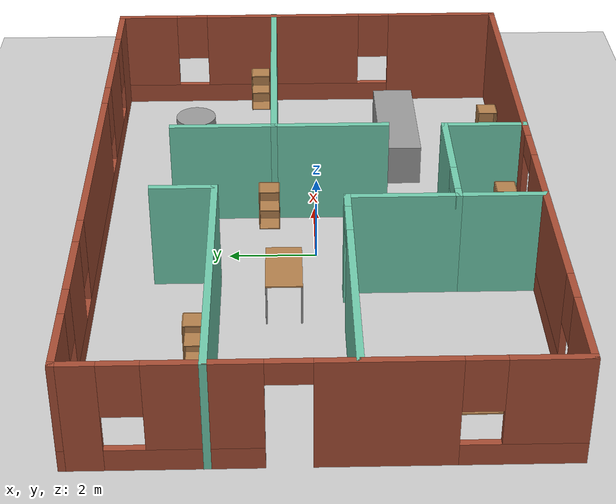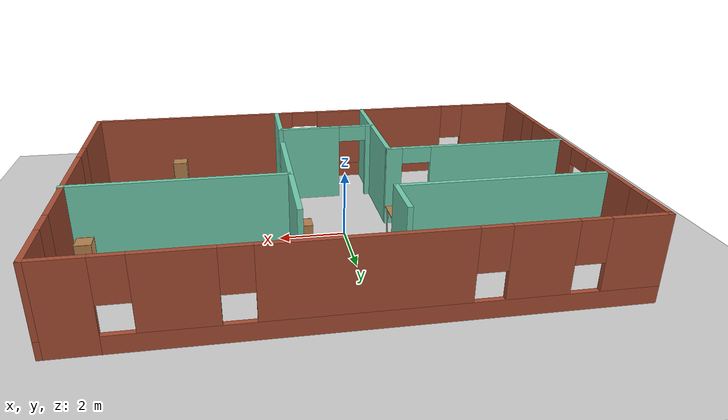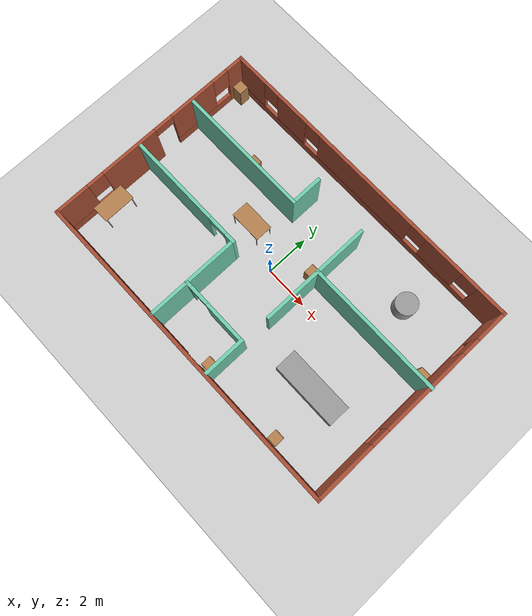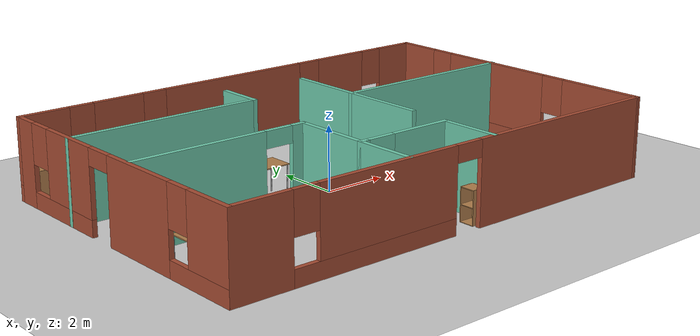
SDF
<sdf version="1.6">
 <world name="default">
  <plugin name="welcomeMessage" filename="libhello.so"/>
  <light name="sun" type="directional">
   <pose>0 0 10 0 -0 0</pose>
   <diffuse>0.8 0.8 0.8 1</diffuse>
   <specular>0.2 0.2 0.2 1</specular>
   <attenuation>
    <range>1000</range>
    <constant>0.9</constant>
    <linear>0.01</linear>
    <quadratic>0.001</quadratic>
   </attenuation>
   <direction>-0.5 0.1 -0.9</direction>
  </light>
  <model name="ground_plane">
   <static>1</static>
   <link name="link">
    <collision name="collision">
     <geometry><plane><normal>0 0 1</normal><size>100 100</size></plane></geometry>
     <surface><friction><ode><mu>100</mu><mu2>50</mu2></ode></friction></surface>
    </collision>
    <visual name="visual">
     <cast_shadows>0</cast_shadows>
     <geometry><plane><normal>0 0 1</normal><size>100 100</size></plane></geometry>
     <material>
      <script><uri>file://media/materials/scripts/gazebo.material</uri><name>Gazebo/Grey</name></script>
     </material>
    </visual>
   </link>
  </model>
  <gravity>0 0 -9.8</gravity>
  <magnetic_field>6e-06 2.3e-05 -4.2e-05</magnetic_field>
  <atmosphere type="adiabatic"/>
  <physics name="default_physics" default="0" type="ode">
   <max_step_size>0.001</max_step_size>
   <real_time_factor>1</real_time_factor>
   <real_time_update_rate>1000</real_time_update_rate>
  </physics>
  <scene><ambient>0.4 0.4 0.4 1</ambient><background>0.7 0.7 0.7 1</background><shadows>1</shadows></scene>
  <spherical_coordinates>
   <surface_model>EARTH_WGS84</surface_model>
   <latitude_deg>0</latitude_deg>
   <longitude_deg>0</longitude_deg>
   <elevation>0</elevation>
   <heading_deg>0</heading_deg>
  </spherical_coordinates>
  <model name="cabinet_0">
   <static>1</static>
   <link name="cabinet_bottom_plate">
    <inertial>
     <pose>0 0 -1 0 -0 0</pose>
     <inertia><ixx>2.05</ixx><ixy>0</ixy><ixz>0</ixz><iyy>2.05</iyy><iyz>0</iyz><izz>2.05</izz></inertia>
     <mass>25</mass>
    </inertial>
    <collision name="cabinet_bottom_plate_geom">
     <pose>0 0 0.01 0 -0 0</pose>
     <geometry><box><size>0.45 0.45 0.02</size></box></geometry>
    </collision>
    <visual name="cabinet_bottom_plate_geom_visual">
     <pose>0 0 0.01 0 -0 0</pose>
     <geometry><box><size>0.45 0.45 0.02</size></box></geometry>
     <material>
      <script><uri>file://media/materials/scripts/gazebo.material</uri><name>Gazebo/Wood</name></script>
     </material>
    </visual>
    <collision name="cabinet_bottom_plate_geom_cabinet_back_plate">
     <pose>0.235 0 0.51 0 -0 0</pose>
     <geometry><box><size>0.02 0.45 1.02</size></box></geometry>
    </collision>
    <visual name="cabinet_bottom_plate_geom_cabinet_back_plate_visual">
     <pose>0.235 0 0.51 0 -0 0</pose>
     <geometry><box><size>0.02 0.45 1.02</size></box></geometry>
     <material>
      <script><uri>file://media/materials/scripts/gazebo.material</uri><name>Gazebo/Wood</name></script>
     </material>
    </visual>
    <collision name="cabinet_bottom_plate_geom_cabinet_left_plate">
     <pose>0 0.235 0.51 0 -0 0</pose>
     <geometry><box><size>0.45 0.02 1.02</size></box></geometry>
    </collision>
    <visual name="cabinet_bottom_plate_geom_cabinet_left_plate_visual">
     <pose>0 0.235 0.51 0 -0 0</pose>
     <geometry><box><size>0.45 0.02 1.02</size></box></geometry>
     <material>
      <script><uri>file://media/materials/scripts/gazebo.material</uri><name>Gazebo/Wood</name></script>
     </material>
    </visual>
    <collision name="cabinet_bottom_plate_geom_cabinet_middle_plate">
     <pose>0 0 0.51 0 -0 0</pose>
     <geometry><box><size>0.45 0.45 0.02</size></box></geometry>
    </collision>
    <visual name="cabinet_bottom_plate_geom_cabinet_middle_plate_visual">
     <pose>0 0 0.51 0 -0 0</pose>
     <geometry><box><size>0.45 0.45 0.02</size></box></geometry>
     <material>
      <script><uri>file://media/materials/scripts/gazebo.material</uri><name>Gazebo/Wood</name></script>
     </material>
    </visual>
    <collision name="cabinet_bottom_plate_geom_cabinet_right_plate">
     <pose>0 -0.235 0.51 0 -0 0</pose>
     <geometry><box><size>0.45 0.02 1.02</size></box></geometry>
    </collision>
    <visual name="cabinet_bottom_plate_geom_cabinet_right_plate_visual">
     <pose>0 -0.235 0.51 0 -0 0</pose>
     <geometry><box><size>0.45 0.02 1.02</size></box></geometry>
     <material>
      <script><uri>file://media/materials/scripts/gazebo.material</uri><name>Gazebo/Wood</name></script>
     </material>
    </visual>
    <collision name="cabinet_bottom_plate_geom_cabinet_top_plate">
     <pose>0 0 1.01 0 -0 0</pose>
     <geometry><box><size>0.45 0.45 0.02</size></box></geometry>
    </collision>
    <visual name="cabinet_bottom_plate_geom_cabinet_top_plate_visual">
     <pose>0 0 1.01 0 -0 0</pose>
     <geometry><box><size>0.45 0.45 0.02</size></box></geometry>
     <material>
      <script><uri>file://media/materials/scripts/gazebo.material</uri><name>Gazebo/Wood</name></script>
     </material>
    </visual>
   </link>
   <pose>7.34356 1.32343 0 0 -0 0</pose>
  </model>
  <model name="cabinet_1">
   <static>1</static>
   <link name="cabinet_bottom_plate">
    <inertial>
     <pose>0 0 -1 0 -0 0</pose>
     <inertia><ixx>2.05</ixx><ixy>0</ixy><ixz>0</ixz><iyy>2.05</iyy><iyz>0</iyz><izz>2.05</izz></inertia>
     <mass>25</mass>
    </inertial>
    <collision name="cabinet_bottom_plate_geom">
     <pose>0 0 0.01 0 -0 0</pose>
     <geometry><box><size>0.45 0.45 0.02</size></box></geometry>
    </collision>
    <visual name="cabinet_bottom_plate_geom_visual">
     <pose>0 0 0.01 0 -0 0</pose>
     <geometry><box><size>0.45 0.45 0.02</size></box></geometry>
     <material>
      <script><uri>file://media/materials/scripts/gazebo.material</uri><name>Gazebo/Wood</name></script>
     </material>
    </visual>
    <collision name="cabinet_bottom_plate_geom_cabinet_back_plate">
     <pose>0.235 0 0.51 0 -0 0</pose>
     <geometry><box><size>0.02 0.45 1.02</size></box></geometry>
    </collision>
    <visual name="cabinet_bottom_plate_geom_cabinet_back_plate_visual">
     <pose>0.235 0 0.51 0 -0 0</pose>
     <geometry><box><size>0.02 0.45 1.02</size></box></geometry>
     <material>
      <script><uri>file://media/materials/scripts/gazebo.material</uri><name>Gazebo/Wood</name></script>
     </material>
    </visual>
    <collision name="cabinet_bottom_plate_geom_cabinet_left_plate">
     <pose>0 0.235 0.51 0 -0 0</pose>
     <geometry><box><size>0.45 0.02 1.02</size></box></geometry>
    </collision>
    <visual name="cabinet_bottom_plate_geom_cabinet_left_plate_visual">
     <pose>0 0.235 0.51 0 -0 0</pose>
     <geometry><box><size>0.45 0.02 1.02</size></box></geometry>
     <material>
      <script><uri>file://media/materials/scripts/gazebo.material</uri><name>Gazebo/Wood</name></script>
     </material>
    </visual>
    <collision name="cabinet_bottom_plate_geom_cabinet_middle_plate">
     <pose>0 0 0.51 0 -0 0</pose>
     <geometry><box><size>0.45 0.45 0.02</size></box></geometry>
    </collision>
    <visual name="cabinet_bottom_plate_geom_cabinet_middle_plate_visual">
     <pose>0 0 0.51 0 -0 0</pose>
     <geometry><box><size>0.45 0.45 0.02</size></box></geometry>
     <material>
      <script><uri>file://media/materials/scripts/gazebo.material</uri><name>Gazebo/Wood</name></script>
     </material>
    </visual>
    <collision name="cabinet_bottom_plate_geom_cabinet_right_plate">
     <pose>0 -0.235 0.51 0 -0 0</pose>
     <geometry><box><size>0.45 0.02 1.02</size></box></geometry>
    </collision>
    <visual name="cabinet_bottom_plate_geom_cabinet_right_plate_visual">
     <pose>0 -0.235 0.51 0 -0 0</pose>
     <geometry><box><size>0.45 0.02 1.02</size></box></geometry>
     <material>
      <script><uri>file://media/materials/scripts/gazebo.material</uri><name>Gazebo/Wood</name></script>
     </material>
    </visual>
    <collision name="cabinet_bottom_plate_geom_cabinet_top_plate">
     <pose>0 0 1.01 0 -0 0</pose>
     <geometry><box><size>0.45 0.45 0.02</size></box></geometry>
    </collision>
    <visual name="cabinet_bottom_plate_geom_cabinet_top_plate_visual">
     <pose>0 0 1.01 0 -0 0</pose>
     <geometry><box><size>0.45 0.45 0.02</size></box></geometry>
     <material>
      <script><uri>file://media/materials/scripts/gazebo.material</uri><name>Gazebo/Wood</name></script>
     </material>
    </visual>
   </link>
   <pose>-6.76231 4.55095 0 0 -0 0</pose>
  </model>
  <model name="cabinet_4">
   <static>1</static>
   <link name="cabinet_bottom_plate">
    <inertial>
     <pose>0 0 -1 0 -0 0</pose>
     <inertia><ixx>2.05</ixx><ixy>0</ixy><ixz>0</ixz><iyy>2.05</iyy><iyz>0</iyz><izz>2.05</izz></inertia>
     <mass>25</mass>
    </inertial>
    <collision name="cabinet_bottom_plate_geom">
     <pose>0 0 0.01 0 -0 0</pose>
     <geometry><box><size>0.45 0.45 0.02</size></box></geometry>
    </collision>
    <visual name="cabinet_bottom_plate_geom_visual">
     <pose>0 0 0.01 0 -0 0</pose>
     <geometry><box><size>0.45 0.45 0.02</size></box></geometry>
     <material>
      <script><uri>file://media/materials/scripts/gazebo.material</uri><name>Gazebo/Wood</name></script>
     </material>
    </visual>
    <collision name="cabinet_bottom_plate_geom_cabinet_back_plate">
     <pose>0.235 0 0.51 0 -0 0</pose>
     <geometry><box><size>0.02 0.45 1.02</size></box></geometry>
    </collision>
    <visual name="cabinet_bottom_plate_geom_cabinet_back_plate_visual">
     <pose>0.235 0 0.51 0 -0 0</pose>
     <geometry><box><size>0.02 0.45 1.02</size></box></geometry>
     <material>
      <script><uri>file://media/materials/scripts/gazebo.material</uri><name>Gazebo/Wood</name></script>
     </material>
    </visual>
    <collision name="cabinet_bottom_plate_geom_cabinet_left_plate">
     <pose>0 0.235 0.51 0 -0 0</pose>
     <geometry><box><size>0.45 0.02 1.02</size></box></geometry>
    </collision>
    <visual name="cabinet_bottom_plate_geom_cabinet_left_plate_visual">
     <pose>0 0.235 0.51 0 -0 0</pose>
     <geometry><box><size>0.45 0.02 1.02</size></box></geometry>
     <material>
      <script><uri>file://media/materials/scripts/gazebo.material</uri><name>Gazebo/Wood</name></script>
     </material>
    </visual>
    <collision name="cabinet_bottom_plate_geom_cabinet_middle_plate">
     <pose>0 0 0.51 0 -0 0</pose>
     <geometry><box><size>0.45 0.45 0.02</size></box></geometry>
    </collision>
    <visual name="cabinet_bottom_plate_geom_cabinet_middle_plate_visual">
     <pose>0 0 0.51 0 -0 0</pose>
     <geometry><box><size>0.45 0.45 0.02</size></box></geometry>
     <material>
      <script><uri>file://media/materials/scripts/gazebo.material</uri><name>Gazebo/Wood</name></script>
     </material>
    </visual>
    <collision name="cabinet_bottom_plate_geom_cabinet_right_plate">
     <pose>0 -0.235 0.51 0 -0 0</pose>
     <geometry><box><size>0.45 0.02 1.02</size></box></geometry>
    </collision>
    <visual name="cabinet_bottom_plate_geom_cabinet_right_plate_visual">
     <pose>0 -0.235 0.51 0 -0 0</pose>
     <geometry><box><size>0.45 0.02 1.02</size></box></geometry>
     <material>
      <script><uri>file://media/materials/scripts/gazebo.material</uri><name>Gazebo/Wood</name></script>
     </material>
    </visual>
    <collision name="cabinet_bottom_plate_geom_cabinet_top_plate">
     <pose>0 0 1.01 0 -0 0</pose>
     <geometry><box><size>0.45 0.45 0.02</size></box></geometry>
    </collision>
    <visual name="cabinet_bottom_plate_geom_cabinet_top_plate_visual">
     <pose>0 0 1.01 0 -0 0</pose>
     <geometry><box><size>0.45 0.45 0.02</size></box></geometry>
     <material>
      <script><uri>file://media/materials/scripts/gazebo.material</uri><name>Gazebo/Wood</name></script>
     </material>
    </visual>
   </link>
   <pose>1.26943 -4.49126 0 0 -0 0</pose>
  </model>
  <model name="cabinet_5">
   <static>1</static>
   <link name="cabinet_bottom_plate">
    <inertial>
     <pose>0 0 -1 0 -0 0</pose>
     <inertia><ixx>2.05</ixx><ixy>0</ixy><ixz>0</ixz><iyy>2.05</iyy><iyz>0</iyz><izz>2.05</izz></inertia>
     <mass>25</mass>
    </inertial>
    <collision name="cabinet_bottom_plate_geom">
     <pose>0 0 0.01 0 -0 0</pose>
     <geometry><box><size>0.45 0.45 0.02</size></box></geometry>
    </collision>
    <visual name="cabinet_bottom_plate_geom_visual">
     <pose>0 0 0.01 0 -0 0</pose>
     <geometry><box><size>0.45 0.45 0.02</size></box></geometry>
     <material>
      <script><uri>file://media/materials/scripts/gazebo.material</uri><name>Gazebo/Wood</name></script>
     </material>
    </visual>
    <collision name="cabinet_bottom_plate_geom_cabinet_back_plate">
     <pose>0.235 0 0.51 0 -0 0</pose>
     <geometry><box><size>0.02 0.45 1.02</size></box></geometry>
    </collision>
    <visual name="cabinet_bottom_plate_geom_cabinet_back_plate_visual">
     <pose>0.235 0 0.51 0 -0 0</pose>
     <geometry><box><size>0.02 0.45 1.02</size></box></geometry>
     <material>
      <script><uri>file://media/materials/scripts/gazebo.material</uri><name>Gazebo/Wood</name></script>
     </material>
    </visual>
    <collision name="cabinet_bottom_plate_geom_cabinet_left_plate">
     <pose>0 0.235 0.51 0 -0 0</pose>
     <geometry><box><size>0.45 0.02 1.02</size></box></geometry>
    </collision>
    <visual name="cabinet_bottom_plate_geom_cabinet_left_plate_visual">
     <pose>0 0.235 0.51 0 -0 0</pose>
     <geometry><box><size>0.45 0.02 1.02</size></box></geometry>
     <material>
      <script><uri>file://media/materials/scripts/gazebo.material</uri><name>Gazebo/Wood</name></script>
     </material>
    </visual>
    <collision name="cabinet_bottom_plate_geom_cabinet_middle_plate">
     <pose>0 0 0.51 0 -0 0</pose>
     <geometry><box><size>0.45 0.45 0.02</size></box></geometry>
    </collision>
    <visual name="cabinet_bottom_plate_geom_cabinet_middle_plate_visual">
     <pose>0 0 0.51 0 -0 0</pose>
     <geometry><box><size>0.45 0.45 0.02</size></box></geometry>
     <material>
      <script><uri>file://media/materials/scripts/gazebo.material</uri><name>Gazebo/Wood</name></script>
     </material>
    </visual>
    <collision name="cabinet_bottom_plate_geom_cabinet_right_plate">
     <pose>0 -0.235 0.51 0 -0 0</pose>
     <geometry><box><size>0.45 0.02 1.02</size></box></geometry>
    </collision>
    <visual name="cabinet_bottom_plate_geom_cabinet_right_plate_visual">
     <pose>0 -0.235 0.51 0 -0 0</pose>
     <geometry><box><size>0.45 0.02 1.02</size></box></geometry>
     <material>
      <script><uri>file://media/materials/scripts/gazebo.material</uri><name>Gazebo/Wood</name></script>
     </material>
    </visual>
    <collision name="cabinet_bottom_plate_geom_cabinet_top_plate">
     <pose>0 0 1.01 0 -0 0</pose>
     <geometry><box><size>0.45 0.45 0.02</size></box></geometry>
    </collision>
    <visual name="cabinet_bottom_plate_geom_cabinet_top_plate_visual">
     <pose>0 0 1.01 0 -0 0</pose>
     <geometry><box><size>0.45 0.45 0.02</size></box></geometry>
     <material>
      <script><uri>file://media/materials/scripts/gazebo.material</uri><name>Gazebo/Wood</name></script>
     </material>
    </visual>
   </link>
   <pose>5.12993 -4.52639 0 0 -0 0</pose>
  </model>
  <model name="cabinet_6">
   <static>1</static>
   <link name="cabinet_bottom_plate">
    <inertial>
     <pose>0 0 -1 0 -0 0</pose>
     <inertia><ixx>2.05</ixx><ixy>0</ixy><ixz>0</ixz><iyy>2.05</iyy><iyz>0</iyz><izz>2.05</izz></inertia>
     <mass>25</mass>
    </inertial>
    <collision name="cabinet_bottom_plate_geom">
     <pose>0 0 0.01 0 -0 0</pose>
     <geometry><box><size>0.45 0.45 0.02</size></box></geometry>
    </collision>
    <visual name="cabinet_bottom_plate_geom_visual">
     <pose>0 0 0.01 0 -0 0</pose>
     <geometry><box><size>0.45 0.45 0.02</size></box></geometry>
     <material>
      <script><uri>file://media/materials/scripts/gazebo.material</uri><name>Gazebo/Wood</name></script>
     </material>
    </visual>
    <collision name="cabinet_bottom_plate_geom_cabinet_back_plate">
     <pose>0.235 0 0.51 0 -0 0</pose>
     <geometry><box><size>0.02 0.45 1.02</size></box></geometry>
    </collision>
    <visual name="cabinet_bottom_plate_geom_cabinet_back_plate_visual">
     <pose>0.235 0 0.51 0 -0 0</pose>
     <geometry><box><size>0.02 0.45 1.02</size></box></geometry>
     <material>
      <script><uri>file://media/materials/scripts/gazebo.material</uri><name>Gazebo/Wood</name></script>
     </material>
    </visual>
    <collision name="cabinet_bottom_plate_geom_cabinet_left_plate">
     <pose>0 0.235 0.51 0 -0 0</pose>
     <geometry><box><size>0.45 0.02 1.02</size></box></geometry>
    </collision>
    <visual name="cabinet_bottom_plate_geom_cabinet_left_plate_visual">
     <pose>0 0.235 0.51 0 -0 0</pose>
     <geometry><box><size>0.45 0.02 1.02</size></box></geometry>
     <material>
      <script><uri>file://media/materials/scripts/gazebo.material</uri><name>Gazebo/Wood</name></script>
     </material>
    </visual>
    <collision name="cabinet_bottom_plate_geom_cabinet_middle_plate">
     <pose>0 0 0.51 0 -0 0</pose>
     <geometry><box><size>0.45 0.45 0.02</size></box></geometry>
    </collision>
    <visual name="cabinet_bottom_plate_geom_cabinet_middle_plate_visual">
     <pose>0 0 0.51 0 -0 0</pose>
     <geometry><box><size>0.45 0.45 0.02</size></box></geometry>
     <material>
      <script><uri>file://media/materials/scripts/gazebo.material</uri><name>Gazebo/Wood</name></script>
     </material>
    </visual>
    <collision name="cabinet_bottom_plate_geom_cabinet_right_plate">
     <pose>0 -0.235 0.51 0 -0 0</pose>
     <geometry><box><size>0.45 0.02 1.02</size></box></geometry>
    </collision>
    <visual name="cabinet_bottom_plate_geom_cabinet_right_plate_visual">
     <pose>0 -0.235 0.51 0 -0 0</pose>
     <geometry><box><size>0.45 0.02 1.02</size></box></geometry>
     <material>
      <script><uri>file://media/materials/scripts/gazebo.material</uri><name>Gazebo/Wood</name></script>
     </material>
    </visual>
    <collision name="cabinet_bottom_plate_geom_cabinet_top_plate">
     <pose>0 0 1.01 0 -0 0</pose>
     <geometry><box><size>0.45 0.45 0.02</size></box></geometry>
    </collision>
    <visual name="cabinet_bottom_plate_geom_cabinet_top_plate_visual">
     <pose>0 0 1.01 0 -0 0</pose>
     <geometry><box><size>0.45 0.45 0.02</size></box></geometry>
     <material>
      <script><uri>file://media/materials/scripts/gazebo.material</uri><name>Gazebo/Wood</name></script>
     </material>
    </visual>
   </link>
   <pose>-3.81099 2.60473 0 0 -0 0</pose>
  </model>
  <model name="cabinet_9">
   <static>1</static>
   <link name="cabinet_bottom_plate">
    <inertial>
     <pose>0 0 -1 0 -0 0</pose>
     <inertia><ixx>2.05</ixx><ixy>0</ixy><ixz>0</ixz><iyy>2.05</iyy><iyz>0</iyz><izz>2.05</izz></inertia>
     <mass>25</mass>
    </inertial>
    <collision name="cabinet_bottom_plate_geom">
     <pose>0 0 0.01 0 -0 0</pose>
     <geometry><box><size>0.45 0.45 0.02</size></box></geometry>
    </collision>
    <visual name="cabinet_bottom_plate_geom_visual">
     <pose>0 0 0.01 0 -0 0</pose>
     <geometry><box><size>0.45 0.45 0.02</size></box></geometry>
     <material>
      <script><uri>file://media/materials/scripts/gazebo.material</uri><name>Gazebo/Wood</name></script>
     </material>
    </visual>
    <collision name="cabinet_bottom_plate_geom_cabinet_back_plate">
     <pose>0.235 0 0.51 0 -0 0</pose>
     <geometry><box><size>0.02 0.45 1.02</size></box></geometry>
    </collision>
    <visual name="cabinet_bottom_plate_geom_cabinet_back_plate_visual">
     <pose>0.235 0 0.51 0 -0 0</pose>
     <geometry><box><size>0.02 0.45 1.02</size></box></geometry>
     <material>
      <script><uri>file://media/materials/scripts/gazebo.material</uri><name>Gazebo/Wood</name></script>
     </material>
    </visual>
    <collision name="cabinet_bottom_plate_geom_cabinet_left_plate">
     <pose>0 0.235 0.51 0 -0 0</pose>
     <geometry><box><size>0.45 0.02 1.02</size></box></geometry>
    </collision>
    <visual name="cabinet_bottom_plate_geom_cabinet_left_plate_visual">
     <pose>0 0.235 0.51 0 -0 0</pose>
     <geometry><box><size>0.45 0.02 1.02</size></box></geometry>
     <material>
      <script><uri>file://media/materials/scripts/gazebo.material</uri><name>Gazebo/Wood</name></script>
     </material>
    </visual>
    <collision name="cabinet_bottom_plate_geom_cabinet_middle_plate">
     <pose>0 0 0.51 0 -0 0</pose>
     <geometry><box><size>0.45 0.45 0.02</size></box></geometry>
    </collision>
    <visual name="cabinet_bottom_plate_geom_cabinet_middle_plate_visual">
     <pose>0 0 0.51 0 -0 0</pose>
     <geometry><box><size>0.45 0.45 0.02</size></box></geometry>
     <material>
      <script><uri>file://media/materials/scripts/gazebo.material</uri><name>Gazebo/Wood</name></script>
     </material>
    </visual>
    <collision name="cabinet_bottom_plate_geom_cabinet_right_plate">
     <pose>0 -0.235 0.51 0 -0 0</pose>
     <geometry><box><size>0.45 0.02 1.02</size></box></geometry>
    </collision>
    <visual name="cabinet_bottom_plate_geom_cabinet_right_plate_visual">
     <pose>0 -0.235 0.51 0 -0 0</pose>
     <geometry><box><size>0.45 0.02 1.02</size></box></geometry>
     <material>
      <script><uri>file://media/materials/scripts/gazebo.material</uri><name>Gazebo/Wood</name></script>
     </material>
    </visual>
    <collision name="cabinet_bottom_plate_geom_cabinet_top_plate">
     <pose>0 0 1.01 0 -0 0</pose>
     <geometry><box><size>0.45 0.45 0.02</size></box></geometry>
    </collision>
    <visual name="cabinet_bottom_plate_geom_cabinet_top_plate_visual">
     <pose>0 0 1.01 0 -0 0</pose>
     <geometry><box><size>0.45 0.45 0.02</size></box></geometry>
     <material>
      <script><uri>file://media/materials/scripts/gazebo.material</uri><name>Gazebo/Wood</name></script>
     </material>
    </visual>
   </link>
   <pose>1.35868 1.08099 0 0 -0 0</pose>
  </model>
  <model name="buildingV1">
   <pose>0.35184 0.049711 0 0 -0 0</pose>
   <link name="Wall_22">
    <pose>-7.44478 0 0 0 0 -1.57075</pose>
    <visual name="Wall_22_Visual_0">
     <pose>-4.55966 0 1.25 0 -0 0</pose>
     <geometry><box><size>0.881202 0.15 2.5</size></box></geometry>
     <material>
      <script><uri>file://media/materials/scripts/gazebo.material</uri><name>Gazebo/Bricks</name></script>
      <ambient>0.435294 0.796078 0.67451 1</ambient>
     </material>
     <meta><layer>0</layer></meta>
    </visual>
    <collision name="Wall_22_Collision_0">
     <geometry><box><size>0.881202 0.15 2.5</size></box></geometry>
     <pose>-4.55966 0 1.25 0 -0 0</pose>
    </collision>
    <visual name="Wall_22_Visual_1">
     <pose>1.18623 0 1.25 0 -0 0</pose>
     <geometry><box><size>2.73935 0.15 2.5</size></box></geometry>
     <material>
      <script><uri>file://media/materials/scripts/gazebo.material</uri><name>Gazebo/Bricks</name></script>
      <ambient>0.435294 0.796078 0.67451 1</ambient>
     </material>
     <meta><layer>0</layer></meta>
    </visual>
    <collision name="Wall_22_Collision_1">
     <geometry><box><size>2.73935 0.15 2.5</size></box></geometry>
     <pose>1.18623 0 1.25 0 -0 0</pose>
    </collision>
    <visual name="Wall_22_Visual_2">
     <pose>-2.60125 0 0.25 0 -0 0</pose>
     <geometry><box><size>3.03561 0.15 0.5</size></box></geometry>
     <material>
      <script><uri>file://media/materials/scripts/gazebo.material</uri><name>Gazebo/Bricks</name></script>
      <ambient>0.435294 0.796078 0.67451 1</ambient>
     </material>
     <meta><layer>0</layer></meta>
    </visual>
    <collision name="Wall_22_Collision_2">
     <geometry><box><size>3.03561 0.15 0.5</size></box></geometry>
     <pose>-2.60125 0 0.25 0 -0 0</pose>
    </collision>
    <visual name="Wall_22_Visual_3">
     <pose>3.77808 0 0.25 0 -0 0</pose>
     <geometry><box><size>2.44435 0.15 0.5</size></box></geometry>
     <material>
      <script><uri>file://media/materials/scripts/gazebo.material</uri><name>Gazebo/Bricks</name></script>
      <ambient>0.435294 0.796078 0.67451 1</ambient>
     </material>
     <meta><layer>0</layer></meta>
    </visual>
    <collision name="Wall_22_Collision_3">
     <geometry><box><size>2.44435 0.15 0.5</size></box></geometry>
     <pose>3.77808 0 0.25 0 -0 0</pose>
    </collision>
    <visual name="Wall_22_Visual_4">
     <pose>-2.20125 0 1.5 0 -0 0</pose>
     <geometry><box><size>2.23561 0.15 2</size></box></geometry>
     <material>
      <script><uri>file://media/materials/scripts/gazebo.material</uri><name>Gazebo/Bricks</name></script>
      <ambient>0.435294 0.796078 0.67451 1</ambient>
     </material>
     <meta><layer>0</layer></meta>
    </visual>
    <collision name="Wall_22_Collision_4">
     <geometry><box><size>2.23561 0.15 2</size></box></geometry>
     <pose>-2.20125 0 1.5 0 -0 0</pose>
    </collision>
    <visual name="Wall_22_Visual_5">
     <pose>-2.20125 0 1.5 0 -0 0</pose>
     <geometry><box><size>2.23561 0.15 2</size></box></geometry>
     <material>
      <script><uri>file://media/materials/scripts/gazebo.material</uri><name>Gazebo/Bricks</name></script>
      <ambient>0.435294 0.796078 0.67451 1</ambient>
     </material>
     <meta><layer>0</layer></meta>
    </visual>
    <collision name="Wall_22_Collision_5">
     <geometry><box><size>2.23561 0.15 2</size></box></geometry>
     <pose>-2.20125 0 1.5 0 -0 0</pose>
    </collision>
    <visual name="Wall_22_Visual_6">
     <pose>4.17808 0 1.5 0 -0 0</pose>
     <geometry><box><size>1.64434 0.15 2</size></box></geometry>
     <material>
      <script><uri>file://media/materials/scripts/gazebo.material</uri><name>Gazebo/Bricks</name></script>
      <ambient>0.435294 0.796078 0.67451 1</ambient>
     </material>
     <meta><layer>0</layer></meta>
    </visual>
    <collision name="Wall_22_Collision_6">
     <geometry><box><size>1.64434 0.15 2</size></box></geometry>
     <pose>4.17808 0 1.5 0 -0 0</pose>
    </collision>
    <visual name="Wall_22_Visual_7">
     <pose>-3.71905 0 1.9 0 -0 0</pose>
     <geometry><box><size>0.8 0.15 1.2</size></box></geometry>
     <material>
      <script><uri>file://media/materials/scripts/gazebo.material</uri><name>Gazebo/Bricks</name></script>
      <ambient>0.435294 0.796078 0.67451 1</ambient>
     </material>
     <meta><layer>0</layer></meta>
    </visual>
    <collision name="Wall_22_Collision_7">
     <geometry><box><size>0.8 0.15 1.2</size></box></geometry>
     <pose>-3.71905 0 1.9 0 -0 0</pose>
    </collision>
    <visual name="Wall_22_Visual_8">
     <pose>2.95591 0 1.9 0 -0 0</pose>
     <geometry><box><size>0.8 0.15 1.2</size></box></geometry>
     <material>
      <script><uri>file://media/materials/scripts/gazebo.material</uri><name>Gazebo/Bricks</name></script>
      <ambient>0.435294 0.796078 0.67451 1</ambient>
     </material>
     <meta><layer>0</layer></meta>
    </visual>
    <collision name="Wall_22_Collision_8">
     <geometry><box><size>0.8 0.15 1.2</size></box></geometry>
     <pose>2.95591 0 1.9 0 -0 0</pose>
    </collision>
    <visual name="Wall_22_Visual_9">
     <pose>-0.633441 0 2.25 0 -0 0</pose>
     <geometry><box><size>0.9 0.15 0.5</size></box></geometry>
     <material>
      <script><uri>file://media/materials/scripts/gazebo.material</uri><name>Gazebo/Bricks</name></script>
      <ambient>0.435294 0.796078 0.67451 1</ambient>
     </material>
     <meta><layer>0</layer></meta>
    </visual>
    <collision name="Wall_22_Collision_9">
     <geometry><box><size>0.9 0.15 0.5</size></box></geometry>
     <pose>-0.633441 0 2.25 0 -0 0</pose>
    </collision>
    <visual name="Wall_22_Visual_10">
     <pose>-0.633441 0 2.25 0 -0 0</pose>
     <geometry><box><size>0.9 0.15 0.5</size></box></geometry>
     <material>
      <script><uri>file://media/materials/scripts/gazebo.material</uri><name>Gazebo/Bricks</name></script>
      <ambient>0.435294 0.796078 0.67451 1</ambient>
     </material>
     <meta><layer>0</layer></meta>
    </visual>
    <collision name="Wall_22_Collision_10">
     <geometry><box><size>0.9 0.15 0.5</size></box></geometry>
     <pose>-0.633441 0 2.25 0 -0 0</pose>
    </collision>
   </link>
   <link name="Wall_23">
    <pose>-0.01953 -4.92526 0 0 -0 0</pose>
    <visual name="Wall_23_Visual_0">
     <pose>-6.54805 0 1.25 0 -0 0</pose>
     <geometry><box><size>1.9039 0.15 2.5</size></box></geometry>
     <material>
      <script><uri>file://media/materials/scripts/gazebo.material</uri><name>Gazebo/Bricks</name></script>
      <ambient>0.435294 0.796078 0.67451 1</ambient>
     </material>
     <meta><layer>0</layer></meta>
    </visual>
    <collision name="Wall_23_Collision_0">
     <geometry><box><size>1.9039 0.15 2.5</size></box></geometry>
     <pose>-6.54805 0 1.25 0 -0 0</pose>
    </collision>
    <visual name="Wall_23_Visual_1">
     <pose>4.13151 0 1.25 0 -0 0</pose>
     <geometry><box><size>6.73697 0.15 2.5</size></box></geometry>
     <material>
      <script><uri>file://media/materials/scripts/gazebo.material</uri><name>Gazebo/Bricks</name></script>
      <ambient>0.435294 0.796078 0.67451 1</ambient>
     </material>
     <meta><layer>0</layer></meta>
    </visual>
    <collision name="Wall_23_Collision_1">
     <geometry><box><size>6.73697 0.15 2.5</size></box></geometry>
     <pose>4.13151 0 1.25 0 -0 0</pose>
    </collision>
    <visual name="Wall_23_Visual_2">
     <pose>-2.86654 0 0.25 0 -0 0</pose>
     <geometry><box><size>5.45913 0.15 0.5</size></box></geometry>
     <material>
      <script><uri>file://media/materials/scripts/gazebo.material</uri><name>Gazebo/Bricks</name></script>
      <ambient>0.435294 0.796078 0.67451 1</ambient>
     </material>
     <meta><layer>0</layer></meta>
    </visual>
    <collision name="Wall_23_Collision_2">
     <geometry><box><size>5.45913 0.15 0.5</size></box></geometry>
     <pose>-2.86654 0 0.25 0 -0 0</pose>
    </collision>
    <visual name="Wall_23_Visual_3">
     <pose>-2.46654 0 1.5 0 -0 0</pose>
     <geometry><box><size>4.65913 0.15 2</size></box></geometry>
     <material>
      <script><uri>file://media/materials/scripts/gazebo.material</uri><name>Gazebo/Bricks</name></script>
      <ambient>0.435294 0.796078 0.67451 1</ambient>
     </material>
     <meta><layer>0</layer></meta>
    </visual>
    <collision name="Wall_23_Collision_3">
     <geometry><box><size>4.65913 0.15 2</size></box></geometry>
     <pose>-2.46654 0 1.5 0 -0 0</pose>
    </collision>
    <visual name="Wall_23_Visual_4">
     <pose>-5.1961 0 1.9 0 -0 0</pose>
     <geometry><box><size>0.8 0.15 1.2</size></box></geometry>
     <material>
      <script><uri>file://media/materials/scripts/gazebo.material</uri><name>Gazebo/Bricks</name></script>
      <ambient>0.435294 0.796078 0.67451 1</ambient>
     </material>
     <meta><layer>0</layer></meta>
    </visual>
    <collision name="Wall_23_Collision_4">
     <geometry><box><size>0.8 0.15 1.2</size></box></geometry>
     <pose>-5.1961 0 1.9 0 -0 0</pose>
    </collision>
    <visual name="Wall_23_Visual_5">
     <pose>0.313028 0 2.25 0 -0 0</pose>
     <geometry><box><size>0.9 0.15 0.5</size></box></geometry>
     <material>
      <script><uri>file://media/materials/scripts/gazebo.material</uri><name>Gazebo/Bricks</name></script>
      <ambient>0.435294 0.796078 0.67451 1</ambient>
     </material>
     <meta><layer>0</layer></meta>
    </visual>
    <collision name="Wall_23_Collision_5">
     <geometry><box><size>0.9 0.15 0.5</size></box></geometry>
     <pose>0.313028 0 2.25 0 -0 0</pose>
    </collision>
   </link>
   <link name="Wall_24">
    <pose>7.40522 -0.000216 0 0 -0 1.57085</pose>
    <visual name="Wall_24_Visual_0">
     <pose>-3.58137 0 1.25 0 -0 0</pose>
     <geometry><box><size>2.83735 0.15 2.5</size></box></geometry>
     <material>
      <script><uri>file://media/materials/scripts/gazebo.material</uri><name>Gazebo/Bricks</name></script>
      <ambient>0.435294 0.796078 0.67451 1</ambient>
     </material>
     <meta><layer>0</layer></meta>
    </visual>
    <collision name="Wall_24_Collision_0">
     <geometry><box><size>2.83735 0.15 2.5</size></box></geometry>
     <pose>-3.58137 0 1.25 0 -0 0</pose>
    </collision>
    <visual name="Wall_24_Visual_1">
     <pose>1.41867 0 0.25 0 -0 0</pose>
     <geometry><box><size>7.16273 0.15 0.5</size></box></geometry>
     <material>
      <script><uri>file://media/materials/scripts/gazebo.material</uri><name>Gazebo/Bricks</name></script>
      <ambient>0.435294 0.796078 0.67451 1</ambient>
     </material>
     <meta><layer>0</layer></meta>
    </visual>
    <collision name="Wall_24_Collision_1">
     <geometry><box><size>7.16273 0.15 0.5</size></box></geometry>
     <pose>1.41867 0 0.25 0 -0 0</pose>
    </collision>
    <visual name="Wall_24_Visual_2">
     <pose>0.659093 0 1.5 0 -0 0</pose>
     <geometry><box><size>4.04357 0.15 2</size></box></geometry>
     <material>
      <script><uri>file://media/materials/scripts/gazebo.material</uri><name>Gazebo/Bricks</name></script>
      <ambient>0.435294 0.796078 0.67451 1</ambient>
     </material>
     <meta><layer>0</layer></meta>
    </visual>
    <collision name="Wall_24_Collision_2">
     <geometry><box><size>4.04357 0.15 2</size></box></geometry>
     <pose>0.659093 0 1.5 0 -0 0</pose>
    </collision>
    <visual name="Wall_24_Visual_3">
     <pose>4.24046 0 1.5 0 -0 0</pose>
     <geometry><box><size>1.51916 0.15 2</size></box></geometry>
     <material>
      <script><uri>file://media/materials/scripts/gazebo.material</uri><name>Gazebo/Bricks</name></script>
      <ambient>0.435294 0.796078 0.67451 1</ambient>
     </material>
     <meta><layer>0</layer></meta>
    </visual>
    <collision name="Wall_24_Collision_3">
     <geometry><box><size>1.51916 0.15 2</size></box></geometry>
     <pose>4.24046 0 1.5 0 -0 0</pose>
    </collision>
    <visual name="Wall_24_Visual_4">
     <pose>-1.76269 0 1.9 0 -0 0</pose>
     <geometry><box><size>0.8 0.15 1.2</size></box></geometry>
     <material>
      <script><uri>file://media/materials/scripts/gazebo.material</uri><name>Gazebo/Bricks</name></script>
      <ambient>0.435294 0.796078 0.67451 1</ambient>
     </material>
     <meta><layer>0</layer></meta>
    </visual>
    <collision name="Wall_24_Collision_4">
     <geometry><box><size>0.8 0.15 1.2</size></box></geometry>
     <pose>-1.76269 0 1.9 0 -0 0</pose>
    </collision>
    <visual name="Wall_24_Visual_5">
     <pose>3.08088 0 1.9 0 -0 0</pose>
     <geometry><box><size>0.8 0.15 1.2</size></box></geometry>
     <material>
      <script><uri>file://media/materials/scripts/gazebo.material</uri><name>Gazebo/Bricks</name></script>
      <ambient>0.435294 0.796078 0.67451 1</ambient>
     </material>
     <meta><layer>0</layer></meta>
    </visual>
    <collision name="Wall_24_Collision_5">
     <geometry><box><size>0.8 0.15 1.2</size></box></geometry>
     <pose>3.08088 0 1.9 0 -0 0</pose>
    </collision>
   </link>
   <link name="Wall_25">
    <pose>-0.020025 4.92504 0 0 -0 3.14156</pose>
    <visual name="Wall_25_Visual_0">
     <pose>-6.78709 0 1.25 0 -0 0</pose>
     <geometry><box><size>1.42582 0.15 2.5</size></box></geometry>
     <material>
      <script><uri>file://media/materials/scripts/gazebo.material</uri><name>Gazebo/Bricks</name></script>
      <ambient>0.435294 0.796078 0.67451 1</ambient>
     </material>
     <meta><layer>0</layer></meta>
    </visual>
    <collision name="Wall_25_Collision_0">
     <geometry><box><size>1.42582 0.15 2.5</size></box></geometry>
     <pose>-6.78709 0 1.25 0 -0 0</pose>
    </collision>
    <visual name="Wall_25_Visual_1">
     <pose>0.712913 0 0.25 0 -0 0</pose>
     <geometry><box><size>13.5742 0.15 0.5</size></box></geometry>
     <material>
      <script><uri>file://media/materials/scripts/gazebo.material</uri><name>Gazebo/Bricks</name></script>
      <ambient>0.435294 0.796078 0.67451 1</ambient>
     </material>
     <meta><layer>0</layer></meta>
    </visual>
    <collision name="Wall_25_Collision_1">
     <geometry><box><size>13.5742 0.15 0.5</size></box></geometry>
     <pose>0.712913 0 0.25 0 -0 0</pose>
    </collision>
    <visual name="Wall_25_Visual_2">
     <pose>-4.31757 0 1.5 0 -0 0</pose>
     <geometry><box><size>1.91322 0.15 2</size></box></geometry>
     <material>
      <script><uri>file://media/materials/scripts/gazebo.material</uri><name>Gazebo/Bricks</name></script>
      <ambient>0.435294 0.796078 0.67451 1</ambient>
     </material>
     <meta><layer>0</layer></meta>
    </visual>
    <collision name="Wall_25_Collision_2">
     <geometry><box><size>1.91322 0.15 2</size></box></geometry>
     <pose>-4.31757 0 1.5 0 -0 0</pose>
    </collision>
    <visual name="Wall_25_Visual_3">
     <pose>0.031566 0 1.5 0 -0 0</pose>
     <geometry><box><size>5.18504 0.15 2</size></box></geometry>
     <material>
      <script><uri>file://media/materials/scripts/gazebo.material</uri><name>Gazebo/Bricks</name></script>
      <ambient>0.435294 0.796078 0.67451 1</ambient>
     </material>
     <meta><layer>0</layer></meta>
    </visual>
    <collision name="Wall_25_Collision_3">
     <geometry><box><size>5.18504 0.15 2</size></box></geometry>
     <pose>0.031566 0 1.5 0 -0 0</pose>
    </collision>
    <visual name="Wall_25_Visual_4">
     <pose>4.26099 0 1.5 0 -0 0</pose>
     <geometry><box><size>1.67381 0.15 2</size></box></geometry>
     <material>
      <script><uri>file://media/materials/scripts/gazebo.material</uri><name>Gazebo/Bricks</name></script>
      <ambient>0.435294 0.796078 0.67451 1</ambient>
     </material>
     <meta><layer>0</layer></meta>
    </visual>
    <collision name="Wall_25_Collision_4">
     <geometry><box><size>1.67381 0.15 2</size></box></geometry>
     <pose>4.26099 0 1.5 0 -0 0</pose>
    </collision>
    <visual name="Wall_25_Visual_5">
     <pose>6.69895 0 1.5 0 -0 0</pose>
     <geometry><box><size>1.6021 0.15 2</size></box></geometry>
     <material>
      <script><uri>file://media/materials/scripts/gazebo.material</uri><name>Gazebo/Bricks</name></script>
      <ambient>0.435294 0.796078 0.67451 1</ambient>
     </material>
     <meta><layer>0</layer></meta>
    </visual>
    <collision name="Wall_25_Collision_5">
     <geometry><box><size>1.6021 0.15 2</size></box></geometry>
     <pose>6.69895 0 1.5 0 -0 0</pose>
    </collision>
    <visual name="Wall_25_Visual_6">
     <pose>-5.67417 0 1.9 0 -0 0</pose>
     <geometry><box><size>0.8 0.15 1.2</size></box></geometry>
     <material>
      <script><uri>file://media/materials/scripts/gazebo.material</uri><name>Gazebo/Bricks</name></script>
      <ambient>0.435294 0.796078 0.67451 1</ambient>
     </material>
     <meta><layer>0</layer></meta>
    </visual>
    <collision name="Wall_25_Collision_6">
     <geometry><box><size>0.8 0.15 1.2</size></box></geometry>
     <pose>-5.67417 0 1.9 0 -0 0</pose>
    </collision>
    <visual name="Wall_25_Visual_7">
     <pose>-2.96096 0 1.9 0 -0 0</pose>
     <geometry><box><size>0.8 0.15 1.2</size></box></geometry>
     <material>
      <script><uri>file://media/materials/scripts/gazebo.material</uri><name>Gazebo/Bricks</name></script>
      <ambient>0.435294 0.796078 0.67451 1</ambient>
     </material>
     <meta><layer>0</layer></meta>
    </visual>
    <collision name="Wall_25_Collision_7">
     <geometry><box><size>0.8 0.15 1.2</size></box></geometry>
     <pose>-2.96096 0 1.9 0 -0 0</pose>
    </collision>
    <visual name="Wall_25_Visual_8">
     <pose>3.02409 0 1.9 0 -0 0</pose>
     <geometry><box><size>0.8 0.15 1.2</size></box></geometry>
     <material>
      <script><uri>file://media/materials/scripts/gazebo.material</uri><name>Gazebo/Bricks</name></script>
      <ambient>0.435294 0.796078 0.67451 1</ambient>
     </material>
     <meta><layer>0</layer></meta>
    </visual>
    <collision name="Wall_25_Collision_8">
     <geometry><box><size>0.8 0.15 1.2</size></box></geometry>
     <pose>3.02409 0 1.9 0 -0 0</pose>
    </collision>
    <visual name="Wall_25_Visual_9">
     <pose>5.4979 0 1.9 0 -0 0</pose>
     <geometry><box><size>0.8 0.15 1.2</size></box></geometry>
     <material>
      <script><uri>file://media/materials/scripts/gazebo.material</uri><name>Gazebo/Bricks</name></script>
      <ambient>0.435294 0.796078 0.67451 1</ambient>
     </material>
     <meta><layer>0</layer></meta>
    </visual>
    <collision name="Wall_25_Collision_9">
     <geometry><box><size>0.8 0.15 1.2</size></box></geometry>
     <pose>5.4979 0 1.9 0 -0 0</pose>
    </collision>
   </link>
   <link name="Wall_27">
    <collision name="Wall_27_Collision">
     <geometry><box><size>2 0.15 2.5</size></box></geometry>
     <pose>0 0 1.25 0 -0 0</pose>
    </collision>
    <visual name="Wall_27_Visual">
     <pose>0 0 1.25 0 -0 0</pose>
     <geometry><box><size>2 0.15 2.5</size></box></geometry>
     <material>
      <script><uri>file://media/materials/scripts/gazebo.material</uri><name>Gazebo/Grey</name></script>
      <ambient>0.435294 0.796078 0.67451 1</ambient>
     </material>
     <meta><layer>0</layer></meta>
    </visual>
    <pose>-1.80484 -3.98656 0 0 -0 1.5708</pose>
   </link>
   <link name="Wall_28">
    <pose>-0.254843 -3.06156 0 0 -0 0</pose>
    <visual name="Wall_28_Visual_0">
     <pose>-1.46591 0 1.25 0 -0 0</pose>
     <geometry><box><size>0.318179 0.15 2.5</size></box></geometry>
     <material>
      <script><uri>file://media/materials/scripts/gazebo.material</uri><name>Gazebo/Grey</name></script>
      <ambient>0.435294 0.796078 0.67451 1</ambient>
     </material>
     <meta><layer>0</layer></meta>
    </visual>
    <collision name="Wall_28_Collision_0">
     <geometry><box><size>0.318179 0.15 2.5</size></box></geometry>
     <pose>-1.46591 0 1.25 0 -0 0</pose>
    </collision>
    <visual name="Wall_28_Visual_1">
     <pose>0.609089 0 1.25 0 -0 0</pose>
     <geometry><box><size>2.03182 0.15 2.5</size></box></geometry>
     <material>
      <script><uri>file://media/materials/scripts/gazebo.material</uri><name>Gazebo/Grey</name></script>
      <ambient>0.435294 0.796078 0.67451 1</ambient>
     </material>
     <meta><layer>0</layer></meta>
    </visual>
    <collision name="Wall_28_Collision_1">
     <geometry><box><size>2.03182 0.15 2.5</size></box></geometry>
     <pose>0.609089 0 1.25 0 -0 0</pose>
    </collision>
    <visual name="Wall_28_Visual_2">
     <pose>-0.856821 0 2.25 0 -0 0</pose>
     <geometry><box><size>0.9 0.15 0.5</size></box></geometry>
     <material>
      <script><uri>file://media/materials/scripts/gazebo.material</uri><name>Gazebo/Grey</name></script>
      <ambient>0.435294 0.796078 0.67451 1</ambient>
     </material>
     <meta><layer>0</layer></meta>
    </visual>
    <collision name="Wall_28_Collision_2">
     <geometry><box><size>0.9 0.15 0.5</size></box></geometry>
     <pose>-0.856821 0 2.25 0 -0 0</pose>
    </collision>
   </link>
   <link name="Wall_29">
    <collision name="Wall_29_Collision">
     <geometry><box><size>2 0.15 2.5</size></box></geometry>
     <pose>0 0 1.25 0 -0 0</pose>
    </collision>
    <visual name="Wall_29_Visual">
     <pose>0 0 1.25 0 -0 0</pose>
     <geometry><box><size>2 0.15 2.5</size></box></geometry>
     <material>
      <script><uri>file://media/materials/scripts/gazebo.material</uri><name>Gazebo/Grey</name></script>
      <ambient>0.435294 0.796078 0.67451 1</ambient>
     </material>
     <meta><layer>0</layer></meta>
    </visual>
    <pose>1.29516 -3.98656 0 0 0 -1.5708</pose>
   </link>
   <link name="Wall_31">
    <pose>-4.60484 -0.666194 0 0 -0 0</pose>
    <visual name="Wall_31_Visual_0">
     <pose>-0.701734 0 1.25 0 -0 0</pose>
     <geometry><box><size>4.34653 0.15 2.5</size></box></geometry>
     <material>
      <script><uri>file://media/materials/scripts/gazebo.material</uri><name>Gazebo/Grey</name></script>
      <ambient>0.435294 0.796078 0.67451 1</ambient>
     </material>
     <meta><layer>0</layer></meta>
    </visual>
    <collision name="Wall_31_Collision_0">
     <geometry><box><size>4.34653 0.15 2.5</size></box></geometry>
     <pose>-0.701734 0 1.25 0 -0 0</pose>
    </collision>
    <visual name="Wall_31_Visual_1">
     <pose>2.62327 0 1.25 0 -0 0</pose>
     <geometry><box><size>0.503469 0.15 2.5</size></box></geometry>
     <material>
      <script><uri>file://media/materials/scripts/gazebo.material</uri><name>Gazebo/Grey</name></script>
      <ambient>0.435294 0.796078 0.67451 1</ambient>
     </material>
     <meta><layer>0</layer></meta>
    </visual>
    <collision name="Wall_31_Collision_1">
     <geometry><box><size>0.503469 0.15 2.5</size></box></geometry>
     <pose>2.62327 0 1.25 0 -0 0</pose>
    </collision>
    <visual name="Wall_31_Visual_2">
     <pose>1.92153 0 2.25 0 -0 0</pose>
     <geometry><box><size>0.9 0.15 0.5</size></box></geometry>
     <material>
      <script><uri>file://media/materials/scripts/gazebo.material</uri><name>Gazebo/Grey</name></script>
      <ambient>0.435294 0.796078 0.67451 1</ambient>
     </material>
     <meta><layer>0</layer></meta>
    </visual>
    <collision name="Wall_31_Collision_2">
     <geometry><box><size>0.9 0.15 0.5</size></box></geometry>
     <pose>1.92153 0 2.25 0 -0 0</pose>
    </collision>
   </link>
   <link name="Wall_32">
    <collision name="Wall_32_Collision">
     <geometry><box><size>2.53781 0.15 2.5</size></box></geometry>
     <pose>0 0 1.25 0 -0 0</pose>
    </collision>
    <visual name="Wall_32_Visual">
     <pose>0 0 1.25 0 -0 0</pose>
     <geometry><box><size>2.53781 0.15 2.5</size></box></geometry>
     <material>
      <script><uri>file://media/materials/scripts/gazebo.material</uri><name>Gazebo/Grey</name></script>
      <ambient>0.435294 0.796078 0.67451 1</ambient>
     </material>
     <meta><layer>0</layer></meta>
    </visual>
    <pose>-1.80484 -1.86766 0 0 0 -1.5708</pose>
   </link>
   <link name="Wall_36">
    <collision name="Wall_36_Collision">
     <geometry><box><size>6.25 0.15 2.5</size></box></geometry>
     <pose>0 0 1.25 0 -0 0</pose>
    </collision>
    <visual name="Wall_36_Visual">
     <pose>0 0 1.25 0 -0 0</pose>
     <geometry><box><size>6.25 0.15 2.5</size></box></geometry>
     <material>
      <script><uri>file://media/materials/scripts/gazebo.material</uri><name>Gazebo/Grey</name></script>
      <ambient>0.435294 0.796078 0.67451 1</ambient>
     </material>
     <meta><layer>0</layer></meta>
    </visual>
    <pose>4.39872 0.898449 0 0 -0 3.14159</pose>
   </link>
   <link name="Wall_37">
    <collision name="Wall_37_Collision">
     <geometry><box><size>2.5 0.15 2.5</size></box></geometry>
     <pose>0 0 1.25 0 -0 0</pose>
    </collision>
    <visual name="Wall_37_Visual">
     <pose>0 0 1.25 0 -0 0</pose>
     <geometry><box><size>2.5 0.15 2.5</size></box></geometry>
     <material>
      <script><uri>file://media/materials/scripts/gazebo.material</uri><name>Gazebo/Grey</name></script>
      <ambient>0.435294 0.796078 0.67451 1</ambient>
     </material>
     <meta><layer>0</layer></meta>
    </visual>
    <pose>1.34872 2.07345 0 0 -0 1.5708</pose>
   </link>
   <link name="Wall_39">
    <collision name="Wall_39_Collision">
     <geometry><box><size>2.75 0.15 2.5</size></box></geometry>
     <pose>0 0 1.25 0 -0 0</pose>
    </collision>
    <visual name="Wall_39_Visual">
     <pose>0 0 1.25 0 -0 0</pose>
     <geometry><box><size>2.75 0.15 2.5</size></box></geometry>
     <material>
      <script><uri>file://media/materials/scripts/gazebo.material</uri><name>Gazebo/Grey</name></script>
      <ambient>0.435294 0.796078 0.67451 1</ambient>
     </material>
     <meta><layer>0</layer></meta>
    </visual>
    <pose>1.34872 -0.401551 0 0 0 -1.5708</pose>
   </link>
   <link name="Wall_41">
    <collision name="Wall_41_Collision">
     <geometry><box><size>6.25 0.15 2.5</size></box></geometry>
     <pose>0 0 1.25 0 -0 0</pose>
    </collision>
    <visual name="Wall_41_Visual">
     <pose>0 0 1.25 0 -0 0</pose>
     <geometry><box><size>6.25 0.15 2.5</size></box></geometry>
     <material>
      <script><uri>file://media/materials/scripts/gazebo.material</uri><name>Gazebo/Grey</name></script>
      <ambient>0.435294 0.796078 0.67451 1</ambient>
     </material>
     <meta><layer>0</layer></meta>
    </visual>
    <pose>-4.39872 2.18324 0 0 -0 0</pose>
   </link>
   <link name="Wall_42">
    <collision name="Wall_42_Collision">
     <geometry><box><size>1.5 0.15 2.5</size></box></geometry>
     <pose>0 0 1.25 0 -0 0</pose>
    </collision>
    <visual name="Wall_42_Visual">
     <pose>0 0 1.25 0 -0 0</pose>
     <geometry><box><size>1.5 0.15 2.5</size></box></geometry>
     <material>
      <script><uri>file://media/materials/scripts/gazebo.material</uri><name>Gazebo/Grey</name></script>
      <ambient>0.435294 0.796078 0.67451 1</ambient>
     </material>
     <meta><layer>0</layer></meta>
    </visual>
    <pose>-1.34872 2.85824 0 0 -0 1.5708</pose>
   </link>
   <static>1</static>
  </model>
  <model name="table_0">
   <static>1</static>
   <link name="link">
    <collision name="surface">
     <pose>0 0 1 0 -0 0</pose>
     <geometry><box><size>1.5 0.8 0.03</size></box></geometry>
     <surface><friction><ode><mu>0.6</mu><mu2>0.6</mu2></ode></friction></surface>
    </collision>
    <visual name="visual1">
     <pose>0 0 1 0 -0 0</pose>
     <geometry><box><size>1.5 0.8 0.03</size></box></geometry>
     <material>
      <script><uri>file://media/materials/scripts/gazebo.material</uri><name>Gazebo/Wood</name></script>
     </material>
    </visual>
    <collision name="front_left_leg">
     <pose>0.68 0.38 0.5 0 -0 0</pose>
     <geometry><cylinder><radius>0.02</radius><length>1</length></cylinder></geometry>
    </collision>
    <visual name="front_left_leg">
     <pose>0.68 0.38 0.5 0 -0 0</pose>
     <geometry><cylinder><radius>0.02</radius><length>1</length></cylinder></geometry>
     <material>
      <script><uri>file://media/materials/scripts/gazebo.material</uri><name>Gazebo/Grey</name></script>
     </material>
    </visual>
    <collision name="front_right_leg">
     <pose>0.68 -0.38 0.5 0 -0 0</pose>
     <geometry><cylinder><radius>0.02</radius><length>1</length></cylinder></geometry>
    </collision>
    <visual name="front_right_leg">
     <pose>0.68 -0.38 0.5 0 -0 0</pose>
     <geometry><cylinder><radius>0.02</radius><length>1</length></cylinder></geometry>
     <material>
      <script><uri>file://media/materials/scripts/gazebo.material</uri><name>Gazebo/Grey</name></script>
     </material>
    </visual>
    <collision name="back_right_leg">
     <pose>-0.68 -0.38 0.5 0 -0 0</pose>
     <geometry><cylinder><radius>0.02</radius><length>1</length></cylinder></geometry>
    </collision>
    <visual name="back_right_leg">
     <pose>-0.68 -0.38 0.5 0 -0 0</pose>
     <geometry><cylinder><radius>0.02</radius><length>1</length></cylinder></geometry>
     <material>
      <script><uri>file://media/materials/scripts/gazebo.material</uri><name>Gazebo/Grey</name></script>
     </material>
    </visual>
    <collision name="back_left_leg">
     <pose>-0.68 0.38 0.5 0 -0 0</pose>
     <geometry><cylinder><radius>0.02</radius><length>1</length></cylinder></geometry>
    </collision>
    <visual name="back_left_leg">
     <pose>-0.68 0.38 0.5 0 -0 0</pose>
     <geometry><cylinder><radius>0.02</radius><length>1</length></cylinder></geometry>
     <material>
      <script><uri>file://media/materials/scripts/gazebo.material</uri><name>Gazebo/Grey</name></script>
     </material>
    </visual>
   </link>
   <pose>-1.92562 0.754718 0 0 -0 0</pose>
  </model>
  <model name="unit_cylinder">
   <pose>4.93134 2.95907 0.499998 3e-06 -3e-06 0</pose>
   <link name="link">
    <inertial>
     <mass>1</mass>
     <inertia><ixx>0.145833</ixx><ixy>0</ixy><ixz>0</ixz><iyy>0.145833</iyy><iyz>0</iyz><izz>0.125</izz></inertia>
    </inertial>
    <collision name="collision">
     <geometry><cylinder><radius>0.5</radius><length>1</length></cylinder></geometry>
    </collision>
    <visual name="visual">
     <geometry><cylinder><radius>0.5</radius><length>1</length></cylinder></geometry>
     <material>
      <script><name>Gazebo/Grey</name><uri>file://media/materials/scripts/gazebo.material</uri></script>
     </material>
    </visual>
   </link>
  </model>
  <model name="table">
   <static>1</static>
   <link name="link">
    <collision name="surface">
     <pose>0 0 1 0 -0 0</pose>
     <geometry><box><size>1.5 0.8 0.03</size></box></geometry>
     <surface><friction><ode><mu>0.6</mu><mu2>0.6</mu2></ode></friction></surface>
    </collision>
    <visual name="visual1">
     <pose>0 0 1 0 -0 0</pose>
     <geometry><box><size>1.5 0.8 0.03</size></box></geometry>
     <material>
      <script><uri>file://media/materials/scripts/gazebo.material</uri><name>Gazebo/Wood</name></script>
     </material>
    </visual>
    <collision name="front_left_leg">
     <pose>0.68 0.38 0.5 0 -0 0</pose>
     <geometry><cylinder><radius>0.02</radius><length>1</length></cylinder></geometry>
    </collision>
    <visual name="front_left_leg">
     <pose>0.68 0.38 0.5 0 -0 0</pose>
     <geometry><cylinder><radius>0.02</radius><length>1</length></cylinder></geometry>
     <material>
      <script><uri>file://media/materials/scripts/gazebo.material</uri><name>Gazebo/Grey</name></script>
     </material>
    </visual>
    <collision name="front_right_leg">
     <pose>0.68 -0.38 0.5 0 -0 0</pose>
     <geometry><cylinder><radius>0.02</radius><length>1</length></cylinder></geometry>
    </collision>
    <visual name="front_right_leg">
     <pose>0.68 -0.38 0.5 0 -0 0</pose>
     <geometry><cylinder><radius>0.02</radius><length>1</length></cylinder></geometry>
     <material>
      <script><uri>file://media/materials/scripts/gazebo.material</uri><name>Gazebo/Grey</name></script>
     </material>
    </visual>
    <collision name="back_right_leg">
     <pose>-0.68 -0.38 0.5 0 -0 0</pose>
     <geometry><cylinder><radius>0.02</radius><length>1</length></cylinder></geometry>
    </collision>
    <visual name="back_right_leg">
     <pose>-0.68 -0.38 0.5 0 -0 0</pose>
     <geometry><cylinder><radius>0.02</radius><length>1</length></cylinder></geometry>
     <material>
      <script><uri>file://media/materials/scripts/gazebo.material</uri><name>Gazebo/Grey</name></script>
     </material>
    </visual>
    <collision name="back_left_leg">
     <pose>-0.68 0.38 0.5 0 -0 0</pose>
     <geometry><cylinder><radius>0.02</radius><length>1</length></cylinder></geometry>
    </collision>
    <visual name="back_left_leg">
     <pose>-0.68 0.38 0.5 0 -0 0</pose>
     <geometry><cylinder><radius>0.02</radius><length>1</length></cylinder></geometry>
     <material>
      <script><uri>file://media/materials/scripts/gazebo.material</uri><name>Gazebo/Grey</name></script>
     </material>
    </visual>
   </link>
   <pose>-6.47457 -2.92988 0 0 0 -1.55765</pose>
  </model>
  <model name="unit_box">
   <pose>4.72042 -2.15625 0.499797 0 0.000132 0</pose>
   <link name="link">
    <inertial>
     <mass>1</mass>
     <inertia>
      <ixx>0.166667</ixx>
      <ixy>0</ixy>
      <ixz>0</ixz>
      <iyy>0.166667</iyy>
      <iyz>0</iyz>
      <izz>0.166667</izz>
     </inertia>
    </inertial>
    <collision name="collision"><geometry><box><size>3.08425 1 1</size></box></geometry></collision>
    <visual name="visual">
     <geometry><box><size>3.08425 1 1</size></box></geometry>
     <material>
      <script><name>Gazebo/Grey</name><uri>file://media/materials/scripts/gazebo.material</uri></script>
     </material>
    </visual>
   </link>
  </model>
 </world>
</sdf>
